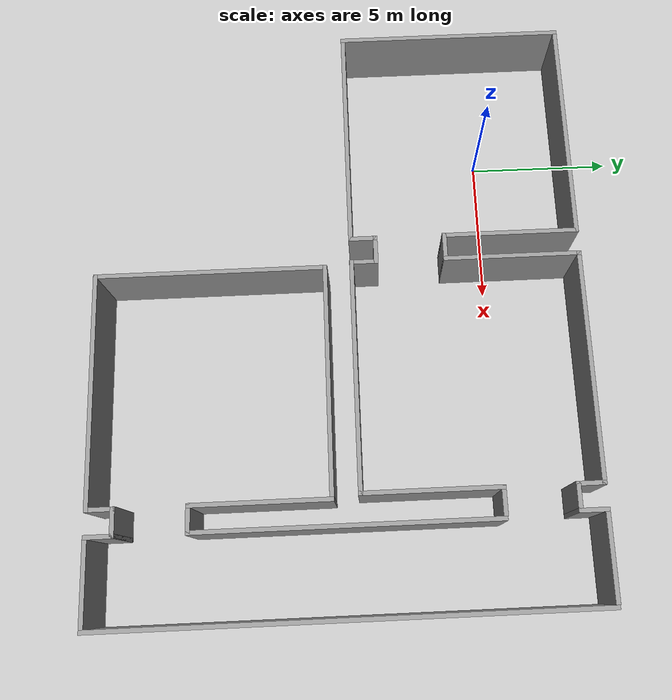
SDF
<?xml version='1.0'?>
<sdf version='1.7'>
  <model name='simsim'>
    <pose>5.86482 -5.211 0 0 -0 0</pose>
    <link name='Wall_10'>
      <collision name='Wall_10_Collision'>
        <geometry>
          <box>
            <size>1 0.15 2.5</size>
          </box>
        </geometry>
        <pose>0 0 1.25 0 -0 0</pose>
      </collision>
      <visual name='Wall_10_Visual'>
        <pose>0 0 1.25 0 -0 0</pose>
        <geometry>
          <box>
            <size>1 0.15 2.5</size>
          </box>
        </geometry>
        <material>
          <script>
            <uri>file://media/materials/scripts/gazebo.material</uri>
            <name>Gazebo/Grey</name>
          </script>
          <ambient>1 1 1 1</ambient>
        </material>
        <meta>
          <layer>0</layer>
        </meta>
      </visual>
      <pose>-2.34518 0.884797 0 0 -0 1.5708</pose>
    </link>
    <link name='Wall_107'>
      <collision name='Wall_107_Collision'>
        <geometry>
          <box>
            <size>1 0.15 2.5</size>
          </box>
        </geometry>
        <pose>0 0 1.25 0 -0 0</pose>
      </collision>
      <visual name='Wall_107_Visual'>
        <pose>0 0 1.25 0 -0 0</pose>
        <geometry>
          <box>
            <size>1 0.15 2.5</size>
          </box>
        </geometry>
        <material>
          <script>
            <uri>file://media/materials/scripts/gazebo.material</uri>
            <name>Gazebo/Grey</name>
          </script>
          <ambient>1 1 1 1</ambient>
        </material>
        <meta>
          <layer>0</layer>
        </meta>
      </visual>
      <pose>7.34518 -7.885 0 0 -0 -1.5708</pose>
    </link>
    <link name='Wall_109'>
      <collision name='Wall_109_Collision'>
        <geometry>
          <box>
            <size>3 0.15 2.5</size>
          </box>
        </geometry>
        <pose>0 0 1.25 0 -0 0</pose>
      </collision>
      <visual name='Wall_109_Visual'>
        <pose>0 0 1.25 0 -0 0</pose>
        <geometry>
          <box>
            <size>3 0.15 2.5</size>
          </box>
        </geometry>
        <material>
          <script>
            <uri>file://media/materials/scripts/gazebo.material</uri>
            <name>Gazebo/Grey</name>
          </script>
          <ambient>1 1 1 1</ambient>
        </material>
        <meta>
          <layer>0</layer>
        </meta>
      </visual>
      <pose>8.77018 -8.31 0 0 -0 0</pose>
    </link>
    <link name='Wall_111'>
      <collision name='Wall_111_Collision'>
        <geometry>
          <box>
            <size>16.75 0.15 2.5</size>
          </box>
        </geometry>
        <pose>0 0 1.25 0 -0 0</pose>
      </collision>
      <visual name='Wall_111_Visual'>
        <pose>0 0 1.25 0 -0 0</pose>
        <geometry>
          <box>
            <size>16.75 0.15 2.5</size>
          </box>
        </geometry>
        <material>
          <script>
            <uri>file://media/materials/scripts/gazebo.material</uri>
            <name>Gazebo/Grey</name>
          </script>
          <ambient>1 1 1 1</ambient>
        </material>
        <meta>
          <layer>0</layer>
        </meta>
      </visual>
      <pose>10.1952 -0.01 0 0 -0 1.5708</pose>
    </link>
    <link name='Wall_113'>
      <collision name='Wall_113_Collision'>
        <geometry>
          <box>
            <size>10.25 0.15 2.5</size>
          </box>
        </geometry>
        <pose>0 0 1.25 0 -0 0</pose>
      </collision>
      <visual name='Wall_113_Visual'>
        <pose>0 0 1.25 0 -0 0</pose>
        <geometry>
          <box>
            <size>10.25 0.15 2.5</size>
          </box>
        </geometry>
        <material>
          <script>
            <uri>file://media/materials/scripts/gazebo.material</uri>
            <name>Gazebo/Grey</name>
          </script>
          <ambient>1 1 1 1</ambient>
        </material>
        <meta>
          <layer>0</layer>
        </meta>
      </visual>
      <pose>7.34478 -0.009817 0 0 -0 1.5708</pose>
    </link>
    <link name='Wall_12'>
      <collision name='Wall_12_Collision'>
        <geometry>
          <box>
            <size>4.75 0.15 2.5</size>
          </box>
        </geometry>
        <pose>0 0 1.25 0 -0 0</pose>
      </collision>
      <visual name='Wall_12_Visual'>
        <pose>0 0 1.25 0 -0 0</pose>
        <geometry>
          <box>
            <size>4.75 0.15 2.5</size>
          </box>
        </geometry>
        <material>
          <script>
            <uri>file://media/materials/scripts/gazebo.material</uri>
            <name>Gazebo/Grey</name>
          </script>
          <ambient>1 1 1 1</ambient>
        </material>
        <meta>
          <layer>0</layer>
        </meta>
      </visual>
      <pose>-2.34518 6.0098 0 0 -0 -1.5708</pose>
    </link>
    <link name='Wall_14'>
      <collision name='Wall_14_Collision'>
        <geometry>
          <box>
            <size>1 0.15 2.5</size>
          </box>
        </geometry>
        <pose>0 0 1.25 0 -0 0</pose>
      </collision>
      <visual name='Wall_14_Visual'>
        <pose>0 0 1.25 0 -0 0</pose>
        <geometry>
          <box>
            <size>1 0.15 2.5</size>
          </box>
        </geometry>
        <material>
          <script>
            <uri>file://media/materials/scripts/gazebo.material</uri>
            <name>Gazebo/Grey</name>
          </script>
          <ambient>1 1 1 1</ambient>
        </material>
        <meta>
          <layer>0</layer>
        </meta>
      </visual>
      <pose>-1.92018 1.3098 0 0 -0 0</pose>
    </link>
    <link name='Wall_16'>
      <collision name='Wall_16_Collision'>
        <geometry>
          <box>
            <size>1 0.15 2.5</size>
          </box>
        </geometry>
        <pose>0 0 1.25 0 -0 0</pose>
      </collision>
      <visual name='Wall_16_Visual'>
        <pose>0 0 1.25 0 -0 0</pose>
        <geometry>
          <box>
            <size>1 0.15 2.5</size>
          </box>
        </geometry>
        <material>
          <script>
            <uri>file://media/materials/scripts/gazebo.material</uri>
            <name>Gazebo/Grey</name>
          </script>
          <ambient>1 1 1 1</ambient>
        </material>
        <meta>
          <layer>0</layer>
        </meta>
      </visual>
      <pose>-1.92018 3.7098 0 0 -0 0</pose>
    </link>
    <link name='Wall_18'>
      <collision name='Wall_18_Collision'>
        <geometry>
          <box>
            <size>4.75 0.15 2.5</size>
          </box>
        </geometry>
        <pose>0 0 1.25 0 -0 0</pose>
      </collision>
      <visual name='Wall_18_Visual'>
        <pose>0 0 1.25 0 -0 0</pose>
        <geometry>
          <box>
            <size>4.75 0.15 2.5</size>
          </box>
        </geometry>
        <material>
          <script>
            <uri>file://media/materials/scripts/gazebo.material</uri>
            <name>Gazebo/Grey</name>
          </script>
          <ambient>1 1 1 1</ambient>
        </material>
        <meta>
          <layer>0</layer>
        </meta>
      </visual>
      <pose>-1.49518 6.0098 0 0 -0 1.5708</pose>
    </link>
    <link name='Wall_21'>
      <collision name='Wall_21_Collision'>
        <geometry>
          <box>
            <size>1 0.15 2.5</size>
          </box>
        </geometry>
        <pose>0 0 1.25 0 -0 0</pose>
      </collision>
      <visual name='Wall_21_Visual'>
        <pose>0 0 1.25 0 -0 0</pose>
        <geometry>
          <box>
            <size>1 0.15 2.5</size>
          </box>
        </geometry>
        <material>
          <script>
            <uri>file://media/materials/scripts/gazebo.material</uri>
            <name>Gazebo/Grey</name>
          </script>
          <ambient>1 1 1 1</ambient>
        </material>
        <meta>
          <layer>0</layer>
        </meta>
      </visual>
      <pose>-1.49518 0.884797 0 0 -0 -1.5708</pose>
    </link>
    <link name='Wall_22'>
      <collision name='Wall_22_Collision'>
        <geometry>
          <box>
            <size>8 0.15 2.5</size>
          </box>
        </geometry>
        <pose>0 0 1.25 0 -0 0</pose>
      </collision>
      <visual name='Wall_22_Visual'>
        <pose>0 0 1.25 0 -0 0</pose>
        <geometry>
          <box>
            <size>8 0.15 2.5</size>
          </box>
        </geometry>
        <material>
          <script>
            <uri>file://media/materials/scripts/gazebo.material</uri>
            <name>Gazebo/Grey</name>
          </script>
          <ambient>1 1 1 1</ambient>
        </material>
        <meta>
          <layer>0</layer>
        </meta>
      </visual>
      <pose>2.42982 0.459797 0 0 -0 0</pose>
    </link>
    <link name='Wall_23'>
      <collision name='Wall_23_Collision'>
        <geometry>
          <box>
            <size>4.75 0.15 2.5</size>
          </box>
        </geometry>
        <pose>0 0 1.25 0 -0 0</pose>
      </collision>
      <visual name='Wall_23_Visual'>
        <pose>0 0 1.25 0 -0 0</pose>
        <geometry>
          <box>
            <size>4.75 0.15 2.5</size>
          </box>
        </geometry>
        <material>
          <script>
            <uri>file://media/materials/scripts/gazebo.material</uri>
            <name>Gazebo/Grey</name>
          </script>
          <ambient>1 1 1 1</ambient>
        </material>
        <meta>
          <layer>0</layer>
        </meta>
      </visual>
      <pose>6.35482 2.7598 0 0 -0 1.5708</pose>
    </link>
    <link name='Wall_25'>
      <collision name='Wall_25_Collision'>
        <geometry>
          <box>
            <size>8 0.15 2.5</size>
          </box>
        </geometry>
        <pose>0 0 1.25 0 -0 0</pose>
      </collision>
      <visual name='Wall_25_Visual'>
        <pose>0 0 1.25 0 -0 0</pose>
        <geometry>
          <box>
            <size>8 0.15 2.5</size>
          </box>
        </geometry>
        <material>
          <script>
            <uri>file://media/materials/scripts/gazebo.material</uri>
            <name>Gazebo/Grey</name>
          </script>
          <ambient>1 1 1 1</ambient>
        </material>
        <meta>
          <layer>0</layer>
        </meta>
      </visual>
      <pose>2.43 8.3099 0 0 -0 2.6e-05</pose>
    </link>
    <link name='Wall_26'>
      <collision name='Wall_26_Collision'>
        <geometry>
          <box>
            <size>1 0.15 2.5</size>
          </box>
        </geometry>
        <pose>0 0 1.25 0 -0 0</pose>
      </collision>
      <visual name='Wall_26_Visual'>
        <pose>0 0 1.25 0 -0 0</pose>
        <geometry>
          <box>
            <size>1 0.15 2.5</size>
          </box>
        </geometry>
        <material>
          <script>
            <uri>file://media/materials/scripts/gazebo.material</uri>
            <name>Gazebo/Grey</name>
          </script>
          <ambient>1 1 1 1</ambient>
        </material>
        <meta>
          <layer>0</layer>
        </meta>
      </visual>
      <pose>6.35518 7.885 0 0 -0 -1.5708</pose>
    </link>
    <link name='Wall_28'>
      <collision name='Wall_28_Collision'>
        <geometry>
          <box>
            <size>1 0.15 2.5</size>
          </box>
        </geometry>
        <pose>0 0 1.25 0 -0 0</pose>
      </collision>
      <visual name='Wall_28_Visual'>
        <pose>0 0 1.25 0 -0 0</pose>
        <geometry>
          <box>
            <size>1 0.15 2.5</size>
          </box>
        </geometry>
        <material>
          <script>
            <uri>file://media/materials/scripts/gazebo.material</uri>
            <name>Gazebo/Grey</name>
          </script>
          <ambient>1 1 1 1</ambient>
        </material>
        <meta>
          <layer>0</layer>
        </meta>
      </visual>
      <pose>6.78018 7.46 0 0 -0 0</pose>
    </link>
    <link name='Wall_29'>
      <collision name='Wall_29_Collision'>
        <geometry>
          <box>
            <size>1 0.15 2.5</size>
          </box>
        </geometry>
        <pose>0 0 1.25 0 -0 0</pose>
      </collision>
      <visual name='Wall_29_Visual'>
        <pose>0 0 1.25 0 -0 0</pose>
        <geometry>
          <box>
            <size>1 0.15 2.5</size>
          </box>
        </geometry>
        <material>
          <script>
            <uri>file://media/materials/scripts/gazebo.material</uri>
            <name>Gazebo/Grey</name>
          </script>
          <ambient>1 1 1 1</ambient>
        </material>
        <meta>
          <layer>0</layer>
        </meta>
      </visual>
      <pose>7.20518 7.885 0 0 -0 1.5708</pose>
    </link>
    <link name='Wall_5'>
      <collision name='Wall_5_Collision'>
        <geometry>
          <box>
            <size>8 0.15 2.5</size>
          </box>
        </geometry>
        <pose>0 0 1.25 0 -0 0</pose>
      </collision>
      <visual name='Wall_5_Visual'>
        <pose>0 0 1.25 0 -0 0</pose>
        <geometry>
          <box>
            <size>8 0.15 2.5</size>
          </box>
        </geometry>
        <material>
          <script>
            <uri>file://media/materials/scripts/gazebo.material</uri>
            <name>Gazebo/Grey</name>
          </script>
          <ambient>1 1 1 1</ambient>
        </material>
        <meta>
          <layer>0</layer>
        </meta>
      </visual>
      <pose>-6.27018 8.3098 0 0 -0 0</pose>
    </link>
    <link name='Wall_67'>
      <collision name='Wall_67_Collision'>
        <geometry>
          <box>
            <size>1 0.15 2.5</size>
          </box>
        </geometry>
        <pose>0 0 1.25 0 -0 0</pose>
      </collision>
      <visual name='Wall_67_Visual'>
        <pose>0 0 1.25 0 -0 0</pose>
        <geometry>
          <box>
            <size>1 0.15 2.5</size>
          </box>
        </geometry>
        <material>
          <script>
            <uri>file://media/materials/scripts/gazebo.material</uri>
            <name>Gazebo/Grey</name>
          </script>
          <ambient>1 1 1 1</ambient>
        </material>
        <meta>
          <layer>0</layer>
        </meta>
      </visual>
      <pose>6.77982 5.0598 0 0 -0 0</pose>
    </link>
    <link name='Wall_7'>
      <collision name='Wall_7_Collision'>
        <geometry>
          <box>
            <size>8 0.15 2.5</size>
          </box>
        </geometry>
        <pose>0 0 1.25 0 -0 0</pose>
      </collision>
      <visual name='Wall_7_Visual'>
        <pose>0 0 1.25 0 -0 0</pose>
        <geometry>
          <box>
            <size>8 0.15 2.5</size>
          </box>
        </geometry>
        <material>
          <script>
            <uri>file://media/materials/scripts/gazebo.material</uri>
            <name>Gazebo/Grey</name>
          </script>
          <ambient>1 1 1 1</ambient>
        </material>
        <meta>
          <layer>0</layer>
        </meta>
      </visual>
      <pose>-10.1952 4.3848 0 0 -0 -1.5708</pose>
    </link>
    <link name='Wall_71'>
      <collision name='Wall_71_Collision'>
        <geometry>
          <box>
            <size>8 0.15 2.5</size>
          </box>
        </geometry>
        <pose>0 0 1.25 0 -0 0</pose>
      </collision>
      <visual name='Wall_71_Visual'>
        <pose>0 0 1.25 0 -0 0</pose>
        <geometry>
          <box>
            <size>8 0.15 2.5</size>
          </box>
        </geometry>
        <material>
          <script>
            <uri>file://media/materials/scripts/gazebo.material</uri>
            <name>Gazebo/Grey</name>
          </script>
          <ambient>1 1 1 1</ambient>
        </material>
        <meta>
          <layer>0</layer>
        </meta>
      </visual>
      <pose>2.56977 -0.459817 0 0 -0 3.14159</pose>
    </link>
    <link name='Wall_78'>
      <collision name='Wall_78_Collision'>
        <geometry>
          <box>
            <size>8 0.15 2.5</size>
          </box>
        </geometry>
        <pose>0 0 1.25 0 -0 0</pose>
      </collision>
      <visual name='Wall_78_Visual'>
        <pose>0 0 1.25 0 -0 0</pose>
        <geometry>
          <box>
            <size>8 0.15 2.5</size>
          </box>
        </geometry>
        <material>
          <script>
            <uri>file://media/materials/scripts/gazebo.material</uri>
            <name>Gazebo/Grey</name>
          </script>
          <ambient>1 1 1 1</ambient>
        </material>
        <meta>
          <layer>0</layer>
        </meta>
      </visual>
      <pose>-1.35522 -4.38482 0 0 -0 -1.5708</pose>
    </link>
    <link name='Wall_80'>
      <collision name='Wall_80_Collision'>
        <geometry>
          <box>
            <size>8 0.15 2.5</size>
          </box>
        </geometry>
        <pose>0 0 1.25 0 -0 0</pose>
      </collision>
      <visual name='Wall_80_Visual'>
        <pose>0 0 1.25 0 -0 0</pose>
        <geometry>
          <box>
            <size>8 0.15 2.5</size>
          </box>
        </geometry>
        <material>
          <script>
            <uri>file://media/materials/scripts/gazebo.material</uri>
            <name>Gazebo/Grey</name>
          </script>
          <ambient>1 1 1 1</ambient>
        </material>
        <meta>
          <layer>0</layer>
        </meta>
      </visual>
      <pose>2.56998 -8.30991 0 0 -0 -2.3e-05</pose>
    </link>
    <link name='Wall_82'>
      <collision name='Wall_82_Collision'>
        <geometry>
          <box>
            <size>1 0.15 2.5</size>
          </box>
        </geometry>
        <pose>0 0 1.25 0 -0 0</pose>
      </collision>
      <visual name='Wall_82_Visual'>
        <pose>0 0 1.25 0 -0 0</pose>
        <geometry>
          <box>
            <size>1 0.15 2.5</size>
          </box>
        </geometry>
        <material>
          <script>
            <uri>file://media/materials/scripts/gazebo.material</uri>
            <name>Gazebo/Grey</name>
          </script>
          <ambient>1 1 1 1</ambient>
        </material>
        <meta>
          <layer>0</layer>
        </meta>
      </visual>
      <pose>6.49518 -7.885 0 0 -0 1.5708</pose>
    </link>
    <link name='Wall_84'>
      <collision name='Wall_84_Collision'>
        <geometry>
          <box>
            <size>4.75 0.15 2.5</size>
          </box>
        </geometry>
        <pose>0 0 1.25 0 -0 0</pose>
      </collision>
      <visual name='Wall_84_Visual'>
        <pose>0 0 1.25 0 -0 0</pose>
        <geometry>
          <box>
            <size>4.75 0.15 2.5</size>
          </box>
        </geometry>
        <material>
          <script>
            <uri>file://media/materials/scripts/gazebo.material</uri>
            <name>Gazebo/Grey</name>
          </script>
          <ambient>1 1 1 1</ambient>
        </material>
        <meta>
          <layer>0</layer>
        </meta>
      </visual>
      <pose>6.49477 -2.75982 0 0 -0 -1.5708</pose>
    </link>
    <link name='Wall_86'>
      <collision name='Wall_86_Collision'>
        <geometry>
          <box>
            <size>1 0.15 2.5</size>
          </box>
        </geometry>
        <pose>0 0 1.25 0 -0 0</pose>
      </collision>
      <visual name='Wall_86_Visual'>
        <pose>0 0 1.25 0 -0 0</pose>
        <geometry>
          <box>
            <size>1 0.15 2.5</size>
          </box>
        </geometry>
        <material>
          <script>
            <uri>file://media/materials/scripts/gazebo.material</uri>
            <name>Gazebo/Grey</name>
          </script>
          <ambient>1 1 1 1</ambient>
        </material>
        <meta>
          <layer>0</layer>
        </meta>
      </visual>
      <pose>6.91977 -5.05982 0 0 -0 0</pose>
    </link>
    <link name='Wall_88'>
      <collision name='Wall_88_Collision'>
        <geometry>
          <box>
            <size>1 0.15 2.5</size>
          </box>
        </geometry>
        <pose>0 0 1.25 0 -0 0</pose>
      </collision>
      <visual name='Wall_88_Visual'>
        <pose>0 0 1.25 0 -0 0</pose>
        <geometry>
          <box>
            <size>1 0.15 2.5</size>
          </box>
        </geometry>
        <material>
          <script>
            <uri>file://media/materials/scripts/gazebo.material</uri>
            <name>Gazebo/Grey</name>
          </script>
          <ambient>1 1 1 1</ambient>
        </material>
        <meta>
          <layer>0</layer>
        </meta>
      </visual>
      <pose>6.92018 -7.46 0 0 -0 0</pose>
    </link>
    <link name='Wall_89'>
      <collision name='Wall_89_Collision'>
        <geometry>
          <box>
            <size>0.15 0.15 2.5</size>
          </box>
        </geometry>
        <pose>0 0 1.25 0 -0 0</pose>
      </collision>
      <visual name='Wall_89_Visual'>
        <pose>0 0 1.25 0 -0 0</pose>
        <geometry>
          <box>
            <size>0.15 0.15 2.5</size>
          </box>
        </geometry>
        <material>
          <script>
            <uri>file://media/materials/scripts/gazebo.material</uri>
            <name>Gazebo/Grey</name>
          </script>
          <ambient>1 1 1 1</ambient>
        </material>
        <meta>
          <layer>0</layer>
        </meta>
      </visual>
      <pose>7.34518 -7.46 0 0 -0 0</pose>
    </link>
    <link name='Wall_9'>
      <collision name='Wall_9_Collision'>
        <geometry>
          <box>
            <size>8 0.15 2.5</size>
          </box>
        </geometry>
        <pose>0 0 1.25 0 -0 0</pose>
      </collision>
      <visual name='Wall_9_Visual'>
        <pose>0 0 1.25 0 -0 0</pose>
        <geometry>
          <box>
            <size>8 0.15 2.5</size>
          </box>
        </geometry>
        <material>
          <script>
            <uri>file://media/materials/scripts/gazebo.material</uri>
            <name>Gazebo/Grey</name>
          </script>
          <ambient>1 1 1 1</ambient>
        </material>
        <meta>
          <layer>0</layer>
        </meta>
      </visual>
      <pose>-6.27018 0.459797 0 0 -0 0</pose>
    </link>
    <link name='Wall_91'>
      <collision name='Wall_91_Collision'>
        <geometry>
          <box>
            <size>3 0.15 2.5</size>
          </box>
        </geometry>
        <pose>0 0 1.25 0 -0 0</pose>
      </collision>
      <visual name='Wall_91_Visual'>
        <pose>0 0 1.25 0 -0 0</pose>
        <geometry>
          <box>
            <size>3 0.15 2.5</size>
          </box>
        </geometry>
        <material>
          <script>
            <uri>file://media/materials/scripts/gazebo.material</uri>
            <name>Gazebo/Grey</name>
          </script>
          <ambient>1 1 1 1</ambient>
        </material>
        <meta>
          <layer>0</layer>
        </meta>
      </visual>
      <pose>8.63018 8.31 0 0 -0 0</pose>
    </link>
    <static>1</static>
  </model>
</sdf>
